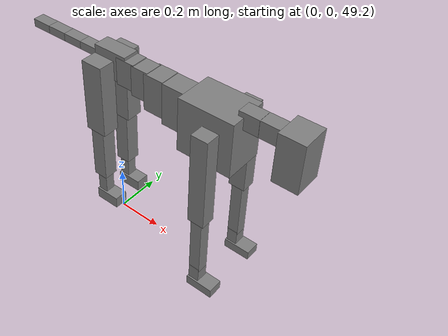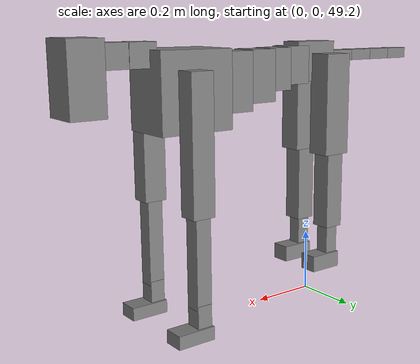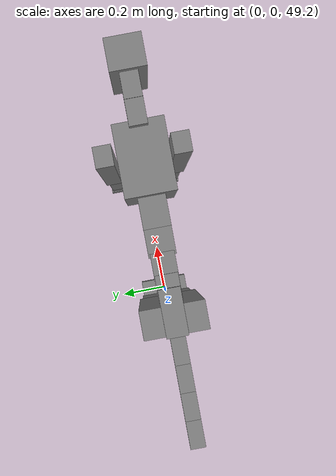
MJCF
<mujoco model="dog">

    <default>
        <joint armature="0.02" stiffness="1" damping="0.2" limited="true"/>
        <geom condim="3" friction="1 0.05 0.05" margin="0.01"/>
        <motor ctrllimited="true" ctrlrange="-1.0 1.0" forcelimited="true" gear="50"/>
    </default>

    <compiler inertiafromgeom="true" angle="radian"/>

    <option timestep="0.016" iterations="50" tolerance="1e-10" solver="Newton" jacobian="dense" cone="pyramidal"/>

    <size nconmax="20000" njmax="60000" nstack="5000000"/>
    <visual>
        <map force="0.1" zfar="30"/>
        <rgba haze="0.15 0.25 0.35 1"/>
        <quality shadowsize="2048"/>
        <global offwidth="800" offheight="800"/>
    </visual>

    <asset>
        <texture type="skybox" builtin="gradient" rgb1="0.3 0.5 0.7" rgb2="0 0 0" width="512" height="512"/>
        <texture name="texplane" type="2d" builtin="checker" rgb1=".2 .3 .4" rgb2=".1 0.15 0.2" width="512" height="512"
                 mark="cross" markrgb=".8 .8 .8"/>
        <texture name="texgeom" type="cube" builtin="flat" mark="cross" width="127" height="1278" rgb1="0.8 0.6 0.4"
                 rgb2="0.8 0.6 0.4" markrgb="1 1 1" random="0.01"/>

        <material name="matplane" reflectance="0.3" texture="texplane" texrepeat="1 1" texuniform="true"/>
        <material name="matgeom" texture="texgeom" texuniform="true" rgba="0.8 0.6 .4 1"/>
    </asset>

    <worldbody>
        <geom name="floor" pos="0 0 0" size="0 0 .25" type="plane" material="matplane" condim="3"/>

        <light directional="false" diffuse=".2 .2 .2" specular="0 0 0" pos="0 0 5" dir="0 0 -1" castshadow="false"/>
        <light mode="targetbodycom" target="torso" directional="false" diffuse=".8 .8 .8" specular="0.3 0.3 0.3"
               pos="0 0 4.0" dir="0 0 -1"/>

        <body name="root" pos="0 0 50">
            <freejoint name="root_1"/>
            <geom type="box" pos="0 0 -0.02" size="0.0774  0.0358  0.063" density="2030"/>

            <body name="spine1" pos="0.054 0 0">
                <joint name="spine1_y" axis="0 1 0" range="0 0.7" limited="true"/>
                <geom type="box" pos="0.02375 0 -0.03" size="0.04375  0.0375  0.05985" density="2030"/>

                <body name="spine2" pos="0.0612 0 0">
                    <joint name="spine2_y" axis="0 1 0" range="-0.15 0.15" limited="true"/>
                    <geom type="box" pos="0.03555  0  -0.04" size="0.04055  0.039  0.06615" density="2030"/>

                    <body name="spine3" pos="0.0730 0 0">
                        <joint name="spine3_y" axis="0 1 0" range="-0.15 0.15" limited="true"/>
                        <geom type="box" pos="0.03555  0  -0.057" size="0.04555  0.0445  0.081" density="2030"/>

                        <body name="spine4" pos="0.0780 0 0">
                            <joint name="spine4_y" axis="0 1 0" range="-0.15 0.15" limited="true"/>
                            <geom type="box" pos="0.05265  0  -0.07" size="0.05265  0.045  0.09135" density="2030"/>

                            <body name="torso" pos="0.1082 0 0">
                                <joint name="torso_y" axis="0 1 0" range="-0.15 0.15" limited="true"/>
                                <geom type="box" pos="0.11925  0  -0.085" size="0.11925  0.085  0.11745"
                                      density="2030"/>

                                <body name="neck1" pos="0.2160  0   0.0180">
                                    <joint name="neck1_y" axis="0 1 0" range="-1.2  -1" limited="true"/>
                                    <geom type="box" pos="0.0423  0  0" size="0.0423  0.03  0.036" density="2325"/>

                                    <body name="neck2" pos="0.0853  0  0">
                                        <joint name="neck2_y" axis="0 1 0" range="0.1  0" limited="true"/>
                                        <geom type="box" pos="0.0423  0  0" size="0.0423  0.03  0.036" density="2325"/>

                                        <body name="head" pos="0.0853  0  0">
                                            <joint name="head_y" axis="0 1 0" range="-0.3  -0.2" limited="true"/>
                                            <geom type="box" pos="0.0531  0  -0.055" size="0.0531  0.06  0.1044"
                                                  density="4030"/>

                                        </body>
                                    </body>
                                </body>

                                <body name="front_shoulder" pos="0.156  0   -0.0480">
                                    <joint name="front_shoulder_y" axis="0 1 0" range="-1 1.5" limited="true"/>
                                    <geom type="box" pos="0 0.13 -0.1778" size="0.0362  0.0310  0.2044" density="1158"/>
                                    <geom type="box" pos="0 -0.13 -0.1778" size="0.0362  0.0310  0.2044"
                                          density="1158"/>

                                    <body name="front_elbow" pos="0  0  -0.3556">
                                        <joint name="front_elbow_y" axis="0 1 0" range="-2 0" limited="true"/>
                                        <geom type="box" pos="0 0.13 -0.1482" size="0.0243  0.0249  0.1482"
                                              density="1081"/>
                                        <geom type="box" pos="0 -0.13 -0.1482" size="0.0243  0.0249  0.1482"
                                              density="1081"/>

                                        <body name="front_wrist" pos="0  0  -0.2964">
                                            <joint name="front_wrist_y" axis="0 1 0" range="-0.2 0" limited="true"/>
                                            <geom type="box" pos="0 0.13 -0.0348" size="0.0233  0.0259  0.0479"
                                                  density="1664"/>
                                            <geom type="box" pos="0 -0.13 -0.0348" size="0.0233  0.0259  0.0479"
                                                  density="1664"/>

                                            <body name="front_finger_end" pos="0  0  -0.0696">
                                                <joint name="front_finger_y" axis="0 1 0" range="-0.4 1"
                                                       limited="true"/>
                                                <geom type="box" pos="0.0328  0.13  -0.0054"
                                                      size="0.0601  0.0328  0.0204" density="1515"/>
                                                <geom type="box" pos="0.0328  -0.13  -0.0054"
                                                      size="0.0601  0.0328  0.0204" density="1515"/>

                                            </body>

                                        </body>
                                    </body>
                                </body>

                            </body>
                        </body>
                    </body>
                </body>
            </body>

            <body name="back_hip" pos="-0.03 0 -0.018">
                <joint name="back_hip_y" axis="0 1 0" range="-1.5 0.3" limited="true"/>
                <geom type="box" pos="0 0.07 -0.1394" size="0.0484  0.0380  0.1622" density="1154"/>
                <geom type="box" pos="0 -0.07 -0.1394" size="0.0484  0.0380  0.1622" density="1154"/>

                <body name="back_knee" pos="0  0  -0.2788">
                    <joint name="back_knee_y" axis="0 1 0" range="0 2.8" limited="true"/>
                    <geom type="box" pos="0 0.07 -0.1264" size="0.0322  0.0318  0.1419" density="1227"/>
                    <geom type="box" pos="0 -0.07 -0.1264" size="0.0322  0.0318  0.1419" density="1227"/>

                    <body name="back_ankle" pos="0  0  -0.2528">
                        <joint name="back_ankle_y" axis="0 1 0" range="-2.2 0" limited="true"/>
                        <geom type="box" pos="0 0.07 -0.0604" size="0.0222  0.0222  0.0717" density="1284"/>
                        <geom type="box" pos="0 -0.07 -0.0604" size="0.0222  0.0222  0.0717" density="1284"/>

                        <body name="back_toe_end" pos="0  0  -0.1209">
                            <joint name="back_toe_y" axis="0 1 0" range="-0.4 1" limited="true"/>
                            <geom type="box" pos="0.0301  0.07  -0.0110" size="0.0551  0.0301  0.0260" density="1515"/>
                            <geom type="box" pos="0.0301  -0.07  -0.0110" size="0.0551  0.0301  0.0260" density="1515"/>

                        </body>
                    </body>
                </body>
            </body>

            <body name="tail1" pos="-0.074 0 -0.006">
                <joint name="tail1_y" axis="0 1 0" range="-0.2 0.2" limited="true"/>
                <geom type="box" pos="-0.0536  0  0" size="0.045  0.025  0.0175" density="1587"/>

                <body name="tail2" pos="-0.09 0 0">
                    <joint name="tail2_y" axis="0 1 0" range="-0.2 0.2" limited="true"/>
                    <geom type="box" pos="-0.0536  0  0" size="0.045  0.025  0.0175" density="1587"/>

                    <body name="tail3" pos="-0.09 0 0">
                        <joint name="tail3_y" axis="0 1 0" range="-0.2 0.2" limited="true"/>
                        <geom type="box" pos="-0.0536  0  0" size="0.045  0.025  0.0175" density="1587"/>

                        <body name="tail4" pos="-0.09 0 0">
                            <joint name="tail4_y" axis="0 1 0" range="-0.2 0.2" limited="true"/>
                            <geom type="box" pos="-0.0536  0  0" size="0.045  0.025  0.0175" density="1587"/>

                        </body>
                    </body>
                </body>
            </body>
        </body>
    </worldbody>

    <actuator>
        <motor joint="spine1_y" forcerange="-150 150     "/>
        <motor joint="spine2_y" forcerange="-150 150     "/>
        <motor joint="spine3_y" forcerange="-150 150     "/>
        <motor joint="spine4_y" forcerange="-150 150     "/>
        <motor joint="torso_y" forcerange="-150 150     "/>
        <motor joint="neck1_y" forcerange="-100 100       "/>
        <motor joint="neck2_y" forcerange="-100 100       "/>
        <motor joint="head_y" forcerange="-150 150       "/>
        <motor joint="front_shoulder_y" forcerange="-135.03 171.47"/>
        <motor joint="front_elbow_y" forcerange="-170.72 110.03"/>
        <motor joint="front_wrist_y" forcerange="-123.07 84.43"/>
        <motor joint="front_finger_y" forcerange="-53.74 81.00"/>
        <motor joint="back_hip_y" forcerange="-338.58 368.07"/>
        <motor joint="back_knee_y" forcerange="-322.08 340.13"/>
        <motor joint="back_angle_y" forcerange="-50.21 204.86"/>
        <motor joint="back_toe_y" forcerange="-121.51 39.02"/>
        <motor joint="tail1_y" forcerange="-50 50     "/>
        <motor joint="tail2_y" forcerange="-50 50     "/>
        <motor joint="tail3_y" forcerange="-50 50     "/>
        <motor joint="tail4_y" forcerange="-50 50     "/>
    </actuator>
</mujoco>
